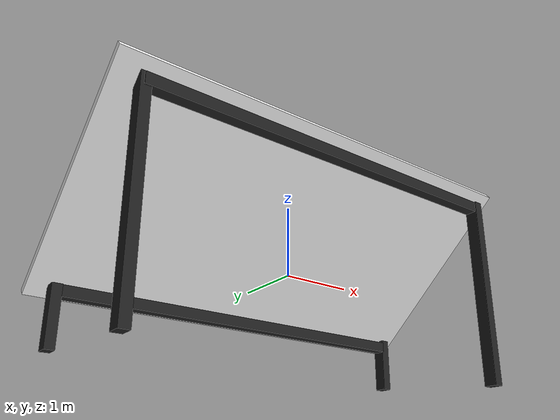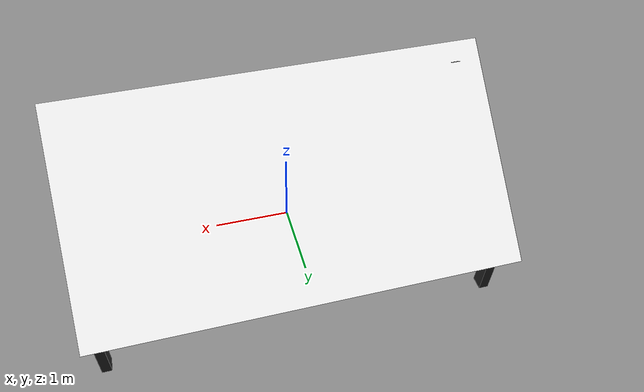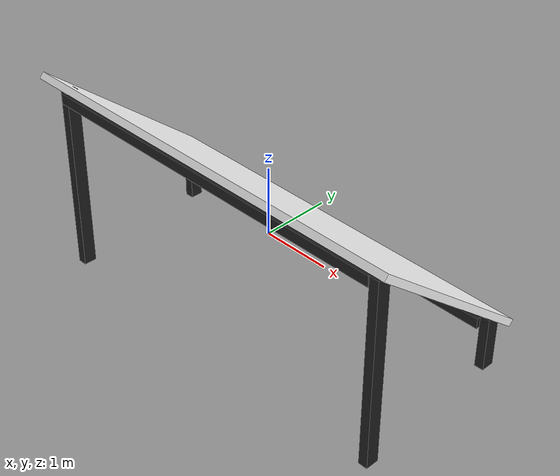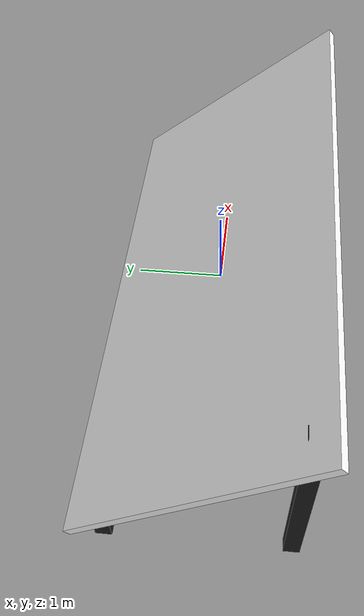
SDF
<?xml version='1.0'?>
<sdf version='1.6'>
  <model name='new_solar'>
    <static>1</static>
    <link name='link_1'>
      <inertial>
        <mass>1.98638</mass>
        <inertia>
          <ixx>1.74251</ixx>
          <ixy>0</ixy>
          <ixz>0</ixz>
          <iyy>6.11467</iyy>
          <iyz>0</iyz>
          <izz>7.85383</izz>
        </inertia>
        <pose frame=''>0 0 0 0 -0 0</pose>
      </inertial>
      <pose frame=''>-0.040001 0.043327 0.560753 -0.688467 0 0</pose>
      <gravity>1</gravity>
      <self_collide>0</self_collide>
      <kinematic>0</kinematic>
      <enable_wind>0</enable_wind>
      <visual name='visual'>
        <pose frame=''>0 0 0 0 -0 0</pose>
        <geometry>
          <box>
            <size>6.07696 3.24293 0.100789</size>
          </box>
        </geometry>
        <material>
          <lighting>1</lighting>
          <script>
            <uri>model://new_solar/materials/scripts</uri>
	    <uri>model://new_solar/materials/textures</uri>
	    <name>solar</name>
          </script>
          <shader type='pixel'>
            <normal_map>__default__</normal_map>
          </shader>
          <ambient>1 1 1 1</ambient>
          <diffuse>1 1 1 1</diffuse>
          <specular>0 0 0 1</specular>
          <emissive>0 0 0 1</emissive>
        </material>
        <transparency>0</transparency>
        <cast_shadows>1</cast_shadows>
      </visual>
      <collision name='collision'>
        <laser_retro>0</laser_retro>
        <max_contacts>10</max_contacts>
        <pose frame=''>0 0 0 0 -0 0</pose>
        <geometry>
          <box>
            <size>6.07696 3.24293 0.100789</size>
          </box>
        </geometry>
        <surface>
          <friction>
            <ode>
              <mu>1</mu>
              <mu2>1</mu2>
              <fdir1>0 0 0</fdir1>
              <slip1>0</slip1>
              <slip2>0</slip2>
            </ode>
            <torsional>
              <coefficient>1</coefficient>
              <patch_radius>0</patch_radius>
              <surface_radius>0</surface_radius>
              <use_patch_radius>1</use_patch_radius>
              <ode>
                <slip>0</slip>
              </ode>
            </torsional>
          </friction>
          <bounce>
            <restitution_coefficient>0</restitution_coefficient>
            <threshold>1e+06</threshold>
          </bounce>
          <contact>
            <collide_without_contact>0</collide_without_contact>
            <collide_without_contact_bitmask>1</collide_without_contact_bitmask>
            <collide_bitmask>1</collide_bitmask>
            <ode>
              <soft_cfm>0</soft_cfm>
              <soft_erp>0.2</soft_erp>
              <kp>1e+13</kp>
              <kd>1</kd>
              <max_vel>0.01</max_vel>
              <min_depth>0</min_depth>
            </ode>
            <bullet>
              <split_impulse>1</split_impulse>
              <split_impulse_penetration_threshold>-0.01</split_impulse_penetration_threshold>
              <soft_cfm>0</soft_cfm>
              <soft_erp>0.2</soft_erp>
              <kp>1e+13</kp>
              <kd>1</kd>
            </bullet>
          </contact>
        </surface>
      </collision>
    </link>
    <link name='link_2'>
      <inertial>
        <mass>0.0207671</mass>
        <inertia>
          <ixx>0.0012143</ixx>
          <ixy>0</ixy>
          <ixz>0</ixz>
          <iyy>0.00118465</iyy>
          <iyz>0</iyz>
          <izz>9.301e-05</izz>
        </inertia>
        <pose frame=''>0 0 0 0 -0 0</pose>
      </inertial>
      <pose frame=''>2.8032 1.09463 -0.744944 0 -0 0</pose>
      <gravity>1</gravity>
      <self_collide>0</self_collide>
      <kinematic>0</kinematic>
      <enable_wind>0</enable_wind>
      <visual name='visual'>
        <pose frame=''>0 0 0 0 -0 0</pose>
        <geometry>
          <box>
            <size>0.135288 0.188253 0.81623</size>
          </box>
        </geometry>
        <material>
          <lighting>1</lighting>
          <script>
            <uri>file://media/materials/scripts/gazebo.material</uri>
            <name>Gazebo/Black</name>
          </script>
          <shader type='pixel'>
            <normal_map>__default__</normal_map>
          </shader>
          <ambient>0 0 0 1</ambient>
          <diffuse>0 0 0 1</diffuse>
          <specular>0.1 0.1 0.1 1</specular>
          <emissive>0 0 0 1</emissive>
        </material>
        <transparency>0</transparency>
        <cast_shadows>1</cast_shadows>
      </visual>
      <collision name='collision'>
        <laser_retro>0</laser_retro>
        <max_contacts>10</max_contacts>
        <pose frame=''>0 0 0 0 -0 0</pose>
        <geometry>
          <box>
            <size>0.135288 0.188253 0.81623</size>
          </box>
        </geometry>
        <surface>
          <friction>
            <ode>
              <mu>1</mu>
              <mu2>1</mu2>
              <fdir1>0 0 0</fdir1>
              <slip1>0</slip1>
              <slip2>0</slip2>
            </ode>
            <torsional>
              <coefficient>1</coefficient>
              <patch_radius>0</patch_radius>
              <surface_radius>0</surface_radius>
              <use_patch_radius>1</use_patch_radius>
              <ode>
                <slip>0</slip>
              </ode>
            </torsional>
          </friction>
          <bounce>
            <restitution_coefficient>0</restitution_coefficient>
            <threshold>1e+06</threshold>
          </bounce>
          <contact>
            <collide_without_contact>0</collide_without_contact>
            <collide_without_contact_bitmask>1</collide_without_contact_bitmask>
            <collide_bitmask>1</collide_bitmask>
            <ode>
              <soft_cfm>0</soft_cfm>
              <soft_erp>0.2</soft_erp>
              <kp>1e+13</kp>
              <kd>1</kd>
              <max_vel>0.01</max_vel>
              <min_depth>0</min_depth>
            </ode>
            <bullet>
              <split_impulse>1</split_impulse>
              <split_impulse_penetration_threshold>-0.01</split_impulse_penetration_threshold>
              <soft_cfm>0</soft_cfm>
              <soft_erp>0.2</soft_erp>
              <kp>1e+13</kp>
              <kd>1</kd>
            </bullet>
          </contact>
        </surface>
      </collision>
    </link>
    <link name='link_2_clone'>
      <inertial>
        <mass>0.0207671</mass>
        <inertia>
          <ixx>0.0012143</ixx>
          <ixy>0</ixy>
          <ixz>0</ixz>
          <iyy>0.00118465</iyy>
          <iyz>0</iyz>
          <izz>9.301e-05</izz>
        </inertia>
        <pose frame=''>0 0 0 0 -0 0</pose>
      </inertial>
      <pose frame=''>-2.7581 1.05673 -0.787934 0 -0 0</pose>
      <gravity>1</gravity>
      <self_collide>0</self_collide>
      <kinematic>0</kinematic>
      <enable_wind>0</enable_wind>
      <visual name='visual'>
        <pose frame=''>0 0 0 0 -0 0</pose>
        <geometry>
          <box>
            <size>0.135288 0.188253 0.81623</size>
          </box>
        </geometry>
        <material>
          <lighting>1</lighting>
          <script>
            <uri>file://media/materials/scripts/gazebo.material</uri>
            <name>Gazebo/Black</name>
          </script>
          <shader type='pixel'>
            <normal_map>__default__</normal_map>
          </shader>
          <ambient>0 0 0 1</ambient>
          <diffuse>0 0 0 1</diffuse>
          <specular>0.1 0.1 0.1 1</specular>
          <emissive>0 0 0 1</emissive>
        </material>
        <transparency>0</transparency>
        <cast_shadows>1</cast_shadows>
      </visual>
      <collision name='collision'>
        <laser_retro>0</laser_retro>
        <max_contacts>10</max_contacts>
        <pose frame=''>0 0 0 0 -0 0</pose>
        <geometry>
          <box>
            <size>0.135288 0.188253 0.81623</size>
          </box>
        </geometry>
        <surface>
          <friction>
            <ode>
              <mu>1</mu>
              <mu2>1</mu2>
              <fdir1>0 0 0</fdir1>
              <slip1>0</slip1>
              <slip2>0</slip2>
            </ode>
            <torsional>
              <coefficient>1</coefficient>
              <patch_radius>0</patch_radius>
              <surface_radius>0</surface_radius>
              <use_patch_radius>1</use_patch_radius>
              <ode>
                <slip>0</slip>
              </ode>
            </torsional>
          </friction>
          <bounce>
            <restitution_coefficient>0</restitution_coefficient>
            <threshold>1e+06</threshold>
          </bounce>
          <contact>
            <collide_without_contact>0</collide_without_contact>
            <collide_without_contact_bitmask>1</collide_without_contact_bitmask>
            <collide_bitmask>1</collide_bitmask>
            <ode>
              <soft_cfm>0</soft_cfm>
              <soft_erp>0.2</soft_erp>
              <kp>1e+13</kp>
              <kd>1</kd>
              <max_vel>0.01</max_vel>
              <min_depth>0</min_depth>
            </ode>
            <bullet>
              <split_impulse>1</split_impulse>
              <split_impulse_penetration_threshold>-0.01</split_impulse_penetration_threshold>
              <soft_cfm>0</soft_cfm>
              <soft_erp>0.2</soft_erp>
              <kp>1e+13</kp>
              <kd>1</kd>
            </bullet>
          </contact>
        </surface>
      </collision>
    </link>
    <link name='link_2_clone_clone_clone'>
      <inertial>
        <mass>0.0712376</mass>
        <inertia>
          <ixx>0.0467501</ixx>
          <ixy>0</ixy>
          <ixz>0</ixz>
          <iyy>0.0466484</iyy>
          <iyz>0</iyz>
          <izz>0.00031904</izz>
        </inertia>
        <pose frame=''>0 0 0 0 -0 0</pose>
      </inertial>
      <pose frame=''>2.7925 -1.06517 0.041693 0 -0 0</pose>
      <gravity>1</gravity>
      <self_collide>0</self_collide>
      <kinematic>0</kinematic>
      <enable_wind>0</enable_wind>
      <visual name='visual'>
        <pose frame=''>0 0 0 0 -0 0</pose>
        <geometry>
          <box>
            <size>0.135288 0.188253 2.79994</size>
          </box>
        </geometry>
        <material>
          <lighting>1</lighting>
          <script>
            <uri>file://media/materials/scripts/gazebo.material</uri>
            <name>Gazebo/Black</name>
          </script>
          <shader type='pixel'>
            <normal_map>__default__</normal_map>
          </shader>
          <ambient>0 0 0 1</ambient>
          <diffuse>0 0 0 1</diffuse>
          <specular>0.1 0.1 0.1 1</specular>
          <emissive>0 0 0 1</emissive>
        </material>
        <transparency>0</transparency>
        <cast_shadows>1</cast_shadows>
      </visual>
      <collision name='collision'>
        <laser_retro>0</laser_retro>
        <max_contacts>10</max_contacts>
        <pose frame=''>0 0 0 0 -0 0</pose>
        <geometry>
          <box>
            <size>0.135288 0.188253 2.79994</size>
          </box>
        </geometry>
        <surface>
          <friction>
            <ode>
              <mu>1</mu>
              <mu2>1</mu2>
              <fdir1>0 0 0</fdir1>
              <slip1>0</slip1>
              <slip2>0</slip2>
            </ode>
            <torsional>
              <coefficient>1</coefficient>
              <patch_radius>0</patch_radius>
              <surface_radius>0</surface_radius>
              <use_patch_radius>1</use_patch_radius>
              <ode>
                <slip>0</slip>
              </ode>
            </torsional>
          </friction>
          <bounce>
            <restitution_coefficient>0</restitution_coefficient>
            <threshold>1e+06</threshold>
          </bounce>
          <contact>
            <collide_without_contact>0</collide_without_contact>
            <collide_without_contact_bitmask>1</collide_without_contact_bitmask>
            <collide_bitmask>1</collide_bitmask>
            <ode>
              <soft_cfm>0</soft_cfm>
              <soft_erp>0.2</soft_erp>
              <kp>1e+13</kp>
              <kd>1</kd>
              <max_vel>0.01</max_vel>
              <min_depth>0</min_depth>
            </ode>
            <bullet>
              <split_impulse>1</split_impulse>
              <split_impulse_penetration_threshold>-0.01</split_impulse_penetration_threshold>
              <soft_cfm>0</soft_cfm>
              <soft_erp>0.2</soft_erp>
              <kp>1e+13</kp>
              <kd>1</kd>
            </bullet>
          </contact>
        </surface>
      </collision>
    </link>
    <link name='link_2_clone_clone_clone_clone'>
      <inertial>
        <mass>0.0712376</mass>
        <inertia>
          <ixx>0.0467501</ixx>
          <ixy>0</ixy>
          <ixz>0</ixz>
          <iyy>0.0466484</iyy>
          <iyz>0</iyz>
          <izz>0.00031904</izz>
        </inertia>
        <pose frame=''>0 0 0 0 -0 0</pose>
      </inertial>
      <pose frame=''>-2.71279 -1.03577 0.041693 0 -0 0</pose>
      <gravity>1</gravity>
      <self_collide>0</self_collide>
      <kinematic>0</kinematic>
      <enable_wind>0</enable_wind>
      <visual name='visual'>
        <pose frame=''>0 0 0 0 -0 0</pose>
        <geometry>
          <box>
            <size>0.135288 0.188253 2.79994</size>
          </box>
        </geometry>
        <material>
          <lighting>1</lighting>
          <script>
            <uri>file://media/materials/scripts/gazebo.material</uri>
            <name>Gazebo/Black</name>
          </script>
          <shader type='pixel'>
            <normal_map>__default__</normal_map>
          </shader>
          <ambient>0 0 0 1</ambient>
          <diffuse>0 0 0 1</diffuse>
          <specular>0.1 0.1 0.1 1</specular>
          <emissive>0 0 0 1</emissive>
        </material>
        <transparency>0</transparency>
        <cast_shadows>1</cast_shadows>
      </visual>
      <collision name='collision'>
        <laser_retro>0</laser_retro>
        <max_contacts>10</max_contacts>
        <pose frame=''>0 0 0 0 -0 0</pose>
        <geometry>
          <box>
            <size>0.135288 0.188253 2.79994</size>
          </box>
        </geometry>
        <surface>
          <friction>
            <ode>
              <mu>1</mu>
              <mu2>1</mu2>
              <fdir1>0 0 0</fdir1>
              <slip1>0</slip1>
              <slip2>0</slip2>
            </ode>
            <torsional>
              <coefficient>1</coefficient>
              <patch_radius>0</patch_radius>
              <surface_radius>0</surface_radius>
              <use_patch_radius>1</use_patch_radius>
              <ode>
                <slip>0</slip>
              </ode>
            </torsional>
          </friction>
          <bounce>
            <restitution_coefficient>0</restitution_coefficient>
            <threshold>1e+06</threshold>
          </bounce>
          <contact>
            <collide_without_contact>0</collide_without_contact>
            <collide_without_contact_bitmask>1</collide_without_contact_bitmask>
            <collide_bitmask>1</collide_bitmask>
            <ode>
              <soft_cfm>0</soft_cfm>
              <soft_erp>0.2</soft_erp>
              <kp>1e+13</kp>
              <kd>1</kd>
              <max_vel>0.01</max_vel>
              <min_depth>0</min_depth>
            </ode>
            <bullet>
              <split_impulse>1</split_impulse>
              <split_impulse_penetration_threshold>-0.01</split_impulse_penetration_threshold>
              <soft_cfm>0</soft_cfm>
              <soft_erp>0.2</soft_erp>
              <kp>1e+13</kp>
              <kd>1</kd>
            </bullet>
          </contact>
        </surface>
      </collision>
    </link>
    <link name='link_3'>
      <inertial>
        <mass>0.133626</mass>
        <inertia>
          <ixx>0.00054826</ixx>
          <ixy>0</ixy>
          <ixz>0</ixz>
          <iyy>0.330433</iyy>
          <iyz>0</iyz>
          <izz>0.330457</izz>
        </inertia>
        <pose frame=''>0 0 0 0 -0 0</pose>
      </inertial>
      <pose frame=''>0 1.04453 -0.461177 0 -0 0</pose>
      <gravity>1</gravity>
      <self_collide>0</self_collide>
      <kinematic>0</kinematic>
      <enable_wind>0</enable_wind>
      <visual name='visual'>
        <pose frame=''>0 0 0 0 -0 0</pose>
        <geometry>
          <box>
            <size>5.44521 0.160272 0.153456</size>
          </box>
        </geometry>
        <material>
          <lighting>1</lighting>
          <script>
            <uri>file://media/materials/scripts/gazebo.material</uri>
            <name>Gazebo/Black</name>
          </script>
          <shader type='pixel'>
            <normal_map>__default__</normal_map>
          </shader>
          <ambient>0 0 0 1</ambient>
          <diffuse>0 0 0 1</diffuse>
          <specular>0.1 0.1 0.1 1</specular>
          <emissive>0 0 0 1</emissive>
        </material>
        <transparency>0</transparency>
        <cast_shadows>1</cast_shadows>
      </visual>
      <collision name='collision'>
        <laser_retro>0</laser_retro>
        <max_contacts>10</max_contacts>
        <pose frame=''>0 0 0 0 -0 0</pose>
        <geometry>
          <box>
            <size>5.44521 0.160272 0.153456</size>
          </box>
        </geometry>
        <surface>
          <friction>
            <ode>
              <mu>1</mu>
              <mu2>1</mu2>
              <fdir1>0 0 0</fdir1>
              <slip1>0</slip1>
              <slip2>0</slip2>
            </ode>
            <torsional>
              <coefficient>1</coefficient>
              <patch_radius>0</patch_radius>
              <surface_radius>0</surface_radius>
              <use_patch_radius>1</use_patch_radius>
              <ode>
                <slip>0</slip>
              </ode>
            </torsional>
          </friction>
          <bounce>
            <restitution_coefficient>0</restitution_coefficient>
            <threshold>1e+06</threshold>
          </bounce>
          <contact>
            <collide_without_contact>0</collide_without_contact>
            <collide_without_contact_bitmask>1</collide_without_contact_bitmask>
            <collide_bitmask>1</collide_bitmask>
            <ode>
              <soft_cfm>0</soft_cfm>
              <soft_erp>0.2</soft_erp>
              <kp>1e+13</kp>
              <kd>1</kd>
              <max_vel>0.01</max_vel>
              <min_depth>0</min_depth>
            </ode>
            <bullet>
              <split_impulse>1</split_impulse>
              <split_impulse_penetration_threshold>-0.01</split_impulse_penetration_threshold>
              <soft_cfm>0</soft_cfm>
              <soft_erp>0.2</soft_erp>
              <kp>1e+13</kp>
              <kd>1</kd>
            </bullet>
          </contact>
        </surface>
      </collision>
    </link>
    <link name='link_3_clone'>
      <inertial>
        <mass>0.133626</mass>
        <inertia>
          <ixx>0.00054826</ixx>
          <ixy>0</ixy>
          <ixz>0</ixz>
          <iyy>0.330433</iyy>
          <iyz>0</iyz>
          <izz>0.330457</izz>
        </inertia>
        <pose frame=''>0 0 0 0 -0 0</pose>
      </inertial>
      <pose frame=''>-0.0149 -1.07367 1.34991 0 -0 0</pose>
      <gravity>1</gravity>
      <self_collide>0</self_collide>
      <kinematic>0</kinematic>
      <enable_wind>0</enable_wind>
      <visual name='visual'>
        <pose frame=''>0 0 0 0 -0 0</pose>
        <geometry>
          <box>
            <size>5.44521 0.160272 0.153456</size>
          </box>
        </geometry>
        <material>
          <lighting>1</lighting>
          <script>
            <uri>file://media/materials/scripts/gazebo.material</uri>
            <name>Gazebo/Black</name>
          </script>
          <shader type='pixel'>
            <normal_map>__default__</normal_map>
          </shader>
          <ambient>0 0 0 1</ambient>
          <diffuse>0 0 0 1</diffuse>
          <specular>0.1 0.1 0.1 1</specular>
          <emissive>0 0 0 1</emissive>
        </material>
        <transparency>0</transparency>
        <cast_shadows>1</cast_shadows>
      </visual>
      <collision name='collision'>
        <laser_retro>0</laser_retro>
        <max_contacts>10</max_contacts>
        <pose frame=''>0 0 0 0 -0 0</pose>
        <geometry>
          <box>
            <size>5.44521 0.160272 0.153456</size>
          </box>
        </geometry>
        <surface>
          <friction>
            <ode>
              <mu>1</mu>
              <mu2>1</mu2>
              <fdir1>0 0 0</fdir1>
              <slip1>0</slip1>
              <slip2>0</slip2>
            </ode>
            <torsional>
              <coefficient>1</coefficient>
              <patch_radius>0</patch_radius>
              <surface_radius>0</surface_radius>
              <use_patch_radius>1</use_patch_radius>
              <ode>
                <slip>0</slip>
              </ode>
            </torsional>
          </friction>
          <bounce>
            <restitution_coefficient>0</restitution_coefficient>
            <threshold>1e+06</threshold>
          </bounce>
          <contact>
            <collide_without_contact>0</collide_without_contact>
            <collide_without_contact_bitmask>1</collide_without_contact_bitmask>
            <collide_bitmask>1</collide_bitmask>
            <ode>
              <soft_cfm>0</soft_cfm>
              <soft_erp>0.2</soft_erp>
              <kp>1e+13</kp>
              <kd>1</kd>
              <max_vel>0.01</max_vel>
              <min_depth>0</min_depth>
            </ode>
            <bullet>
              <split_impulse>1</split_impulse>
              <split_impulse_penetration_threshold>-0.01</split_impulse_penetration_threshold>
              <soft_cfm>0</soft_cfm>
              <soft_erp>0.2</soft_erp>
              <kp>1e+13</kp>
              <kd>1</kd>
            </bullet>
          </contact>
        </surface>
      </collision>
    </link>
    <allow_auto_disable>1</allow_auto_disable>
  </model>
</sdf>
